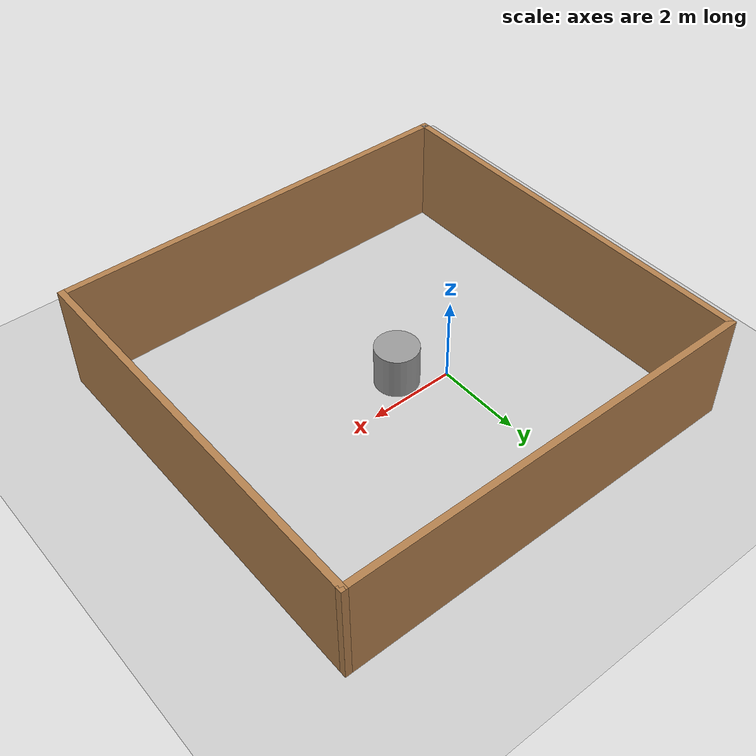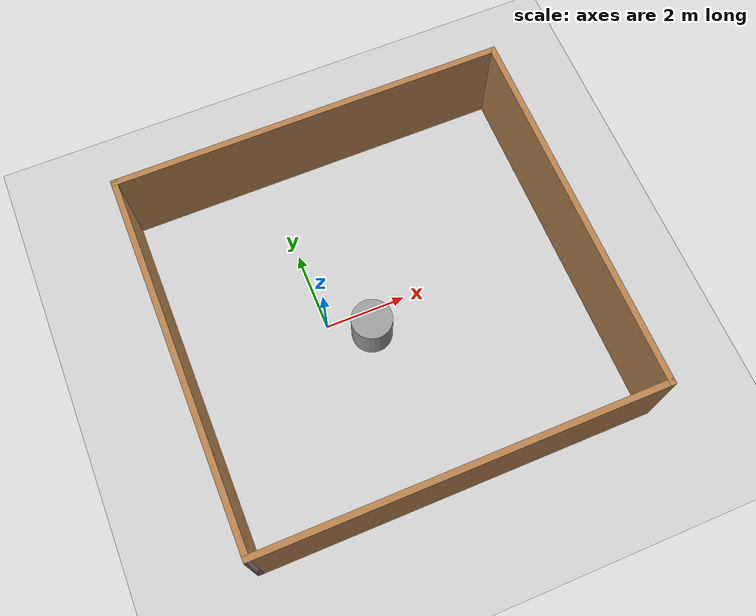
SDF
<sdf version="1.7">
 <world name="default">
  <light name="sun" type="directional">
   <pose>0 0 10 0 -0 0</pose>
   <diffuse>0.8 0.8 0.8 1</diffuse>
   <specular>0.2 0.2 0.2 1</specular>
   <attenuation>
    <range>1000</range>
    <constant>0.9</constant>
    <linear>0.01</linear>
    <quadratic>0.001</quadratic>
   </attenuation>
   <direction>-0.5 0.1 -0.9</direction>
   <spot><inner_angle>0</inner_angle><outer_angle>0</outer_angle><falloff>0</falloff></spot>
  </light>
  <model name="ground_plane">
   <static>1</static>
   <link name="link">
    <collision name="collision">
     <geometry><plane><normal>0 0 1</normal><size>100 100</size></plane></geometry>
     <surface>
      <contact><collide_bitmask>65535</collide_bitmask></contact>
      <friction><ode><mu>100</mu><mu2>50</mu2></ode></friction>
     </surface>
    </collision>
    <visual name="visual">
     <cast_shadows>0</cast_shadows>
     <geometry><plane><normal>0 0 1</normal><size>100 100</size></plane></geometry>
     <material>
      <script><uri>file://media/materials/scripts/gazebo.material</uri><name>Gazebo/Grey</name></script>
     </material>
    </visual>
   </link>
  </model>
  <gravity>0 0 -9.8</gravity>
  <magnetic_field>6e-06 2.3e-05 -4.2e-05</magnetic_field>
  <atmosphere type="adiabatic"/>
  <physics type="ode">
   <max_step_size>0.001</max_step_size>
   <real_time_factor>1</real_time_factor>
   <real_time_update_rate>1000</real_time_update_rate>
  </physics>
  <scene><ambient>0.4 0.4 0.4 1</ambient><background>0.7 0.7 0.7 1</background><shadows>1</shadows></scene>
  <audio><device>default</device></audio>
  <spherical_coordinates>
   <surface_model>EARTH_WGS84</surface_model>
   <latitude_deg>0</latitude_deg>
   <longitude_deg>0</longitude_deg>
   <elevation>0</elevation>
   <heading_deg>0</heading_deg>
  </spherical_coordinates>
  <model name="wall_02">
   <pose>1.32462 -0.272622 0 0 -0 0</pose>
   <link name="Wall_11">
    <collision name="Wall_11_Collision">
     <geometry><box><size>9.25 0.15 2.5</size></box></geometry>
     <pose>0 0 1.25 0 -0 0</pose>
    </collision>
    <visual name="Wall_11_Visual">
     <pose>0 0 1.25 0 -0 0</pose>
     <geometry><box><size>9.25 0.15 2.5</size></box></geometry>
     <material>
      <script><uri>file://media/materials/scripts/gazebo.material</uri><name>Gazebo/Wood</name></script>
      <ambient>1 1 1 1</ambient>
     </material>
     <meta><layer>0</layer></meta>
    </visual>
    <pose>4.8 -0 0 0 -0 1.5708</pose>
   </link>
   <link name="Wall_13">
    <collision name="Wall_13_Collision">
     <geometry><box><size>9.75 0.15 2.5</size></box></geometry>
     <pose>0 0 1.25 0 -0 0</pose>
    </collision>
    <visual name="Wall_13_Visual">
     <pose>0 0 1.25 0 -0 0</pose>
     <geometry><box><size>9.75 0.15 2.5</size></box></geometry>
     <material>
      <script><uri>file://media/materials/scripts/gazebo.material</uri><name>Gazebo/Wood</name></script>
      <ambient>1 1 1 1</ambient>
     </material>
     <meta><layer>0</layer></meta>
    </visual>
    <pose>0 4.55 0 0 -0 3.14159</pose>
   </link>
   <link name="Wall_14">
    <collision name="Wall_14_Collision">
     <geometry><box><size>9.25 0.15 2.5</size></box></geometry>
     <pose>0 0 1.25 0 -0 0</pose>
    </collision>
    <visual name="Wall_14_Visual">
     <pose>0 0 1.25 0 -0 0</pose>
     <geometry><box><size>9.25 0.15 2.5</size></box></geometry>
     <material>
      <script><uri>file://media/materials/scripts/gazebo.material</uri><name>Gazebo/Wood</name></script>
      <ambient>1 1 1 1</ambient>
     </material>
     <meta><layer>0</layer></meta>
    </visual>
    <pose>-4.8 -0 0 0 -0 -1.5708</pose>
   </link>
   <link name="Wall_15">
    <collision name="Wall_15_Collision">
     <geometry><box><size>0.15 0.15 2.5</size></box></geometry>
     <pose>0 0 1.25 0 -0 0</pose>
    </collision>
    <visual name="Wall_15_Visual">
     <pose>0 0 1.25 0 -0 0</pose>
     <geometry><box><size>0.15 0.15 2.5</size></box></geometry>
     <material>
      <script><uri>file://media/materials/scripts/gazebo.material</uri><name>Gazebo/Grey</name></script>
      <ambient>1 1 1 1</ambient>
     </material>
     <meta><layer>0</layer></meta>
    </visual>
    <pose>-4.8 -4.55 0 0 -0 0</pose>
   </link>
   <link name="Wall_9">
    <collision name="Wall_9_Collision">
     <geometry><box><size>9.75 0.15 2.5</size></box></geometry>
     <pose>0 0 1.25 0 -0 0</pose>
    </collision>
    <visual name="Wall_9_Visual">
     <pose>0 0 1.25 0 -0 0</pose>
     <geometry><box><size>9.75 0.15 2.5</size></box></geometry>
     <material>
      <script><uri>file://media/materials/scripts/gazebo.material</uri><name>Gazebo/Wood</name></script>
      <ambient>1 1 1 1</ambient>
     </material>
     <meta><layer>0</layer></meta>
    </visual>
    <pose>0 -4.55 0 0 -0 0</pose>
   </link>
   <static>1</static>
  </model>
  <model name="unit_cylinder">
   <pose>0.952599 -0.558696 0.499997 3e-06 -4e-06 0</pose>
   <link name="link">
    <inertial>
     <mass>1</mass>
     <inertia><ixx>0.145833</ixx><ixy>0</ixy><ixz>0</ixz><iyy>0.145833</iyy><iyz>0</iyz><izz>0.125</izz></inertia>
    </inertial>
    <collision name="collision">
     <geometry><cylinder><radius>0.5</radius><length>1</length></cylinder></geometry>
    </collision>
    <visual name="visual">
     <geometry><cylinder><radius>0.5</radius><length>1</length></cylinder></geometry>
     <material>
      <script><name>Gazebo/Grey</name><uri>file://media/materials/scripts/gazebo.material</uri></script>
     </material>
    </visual>
   </link>
  </model>
 </world>
</sdf>
